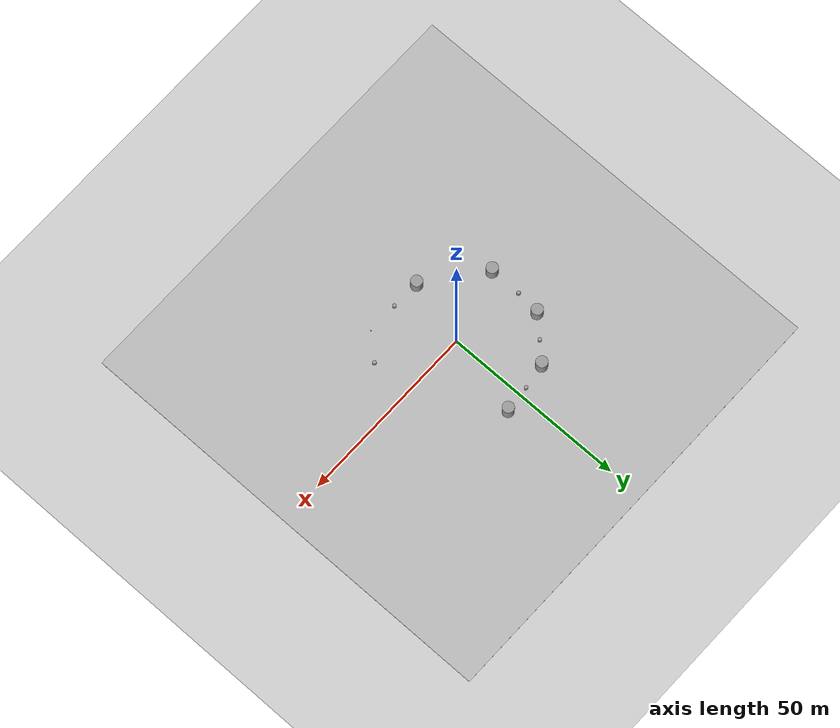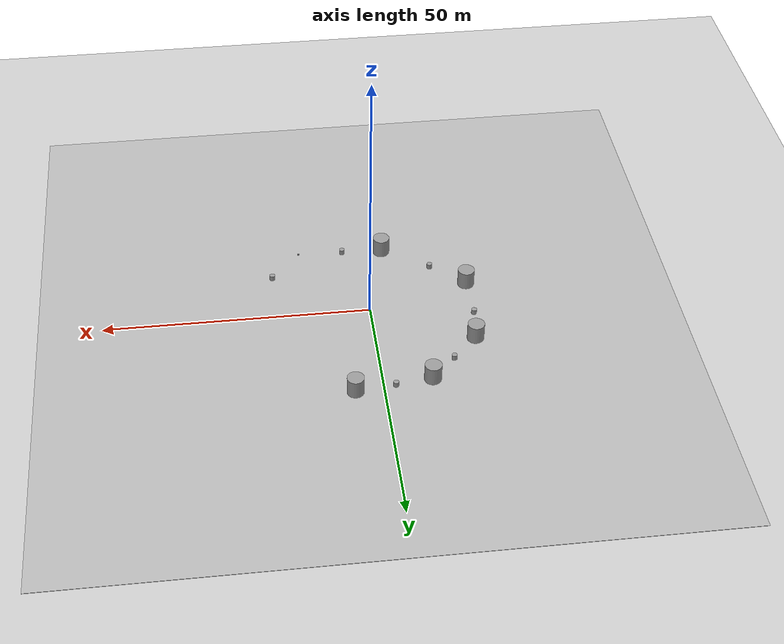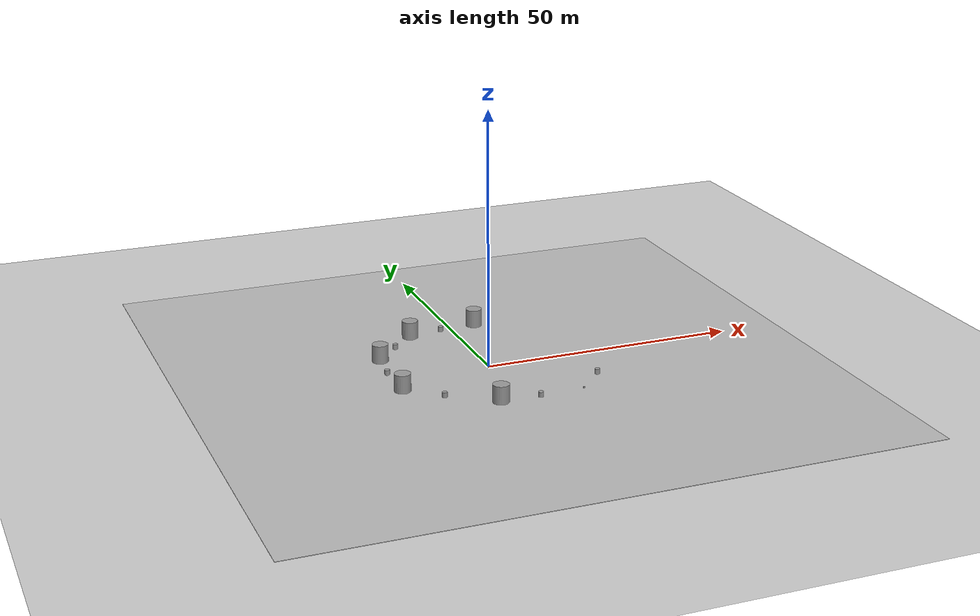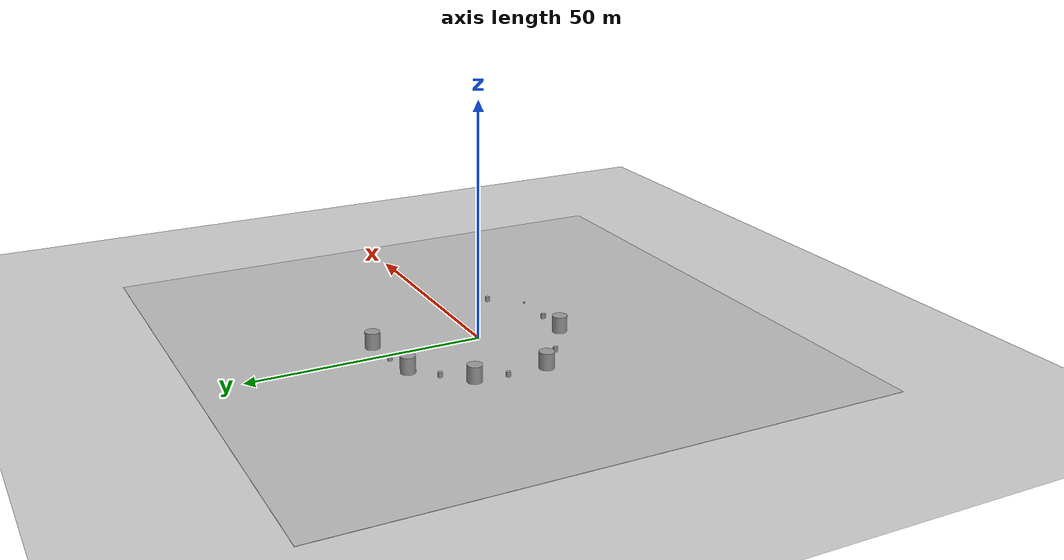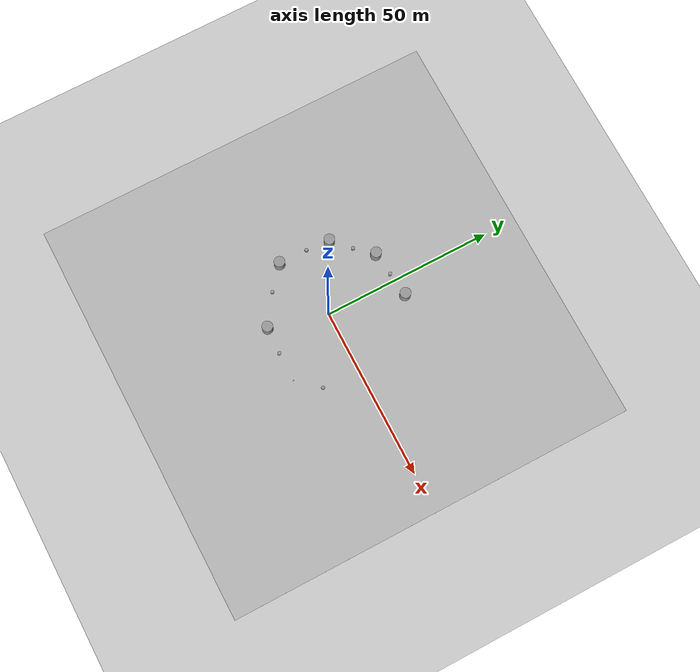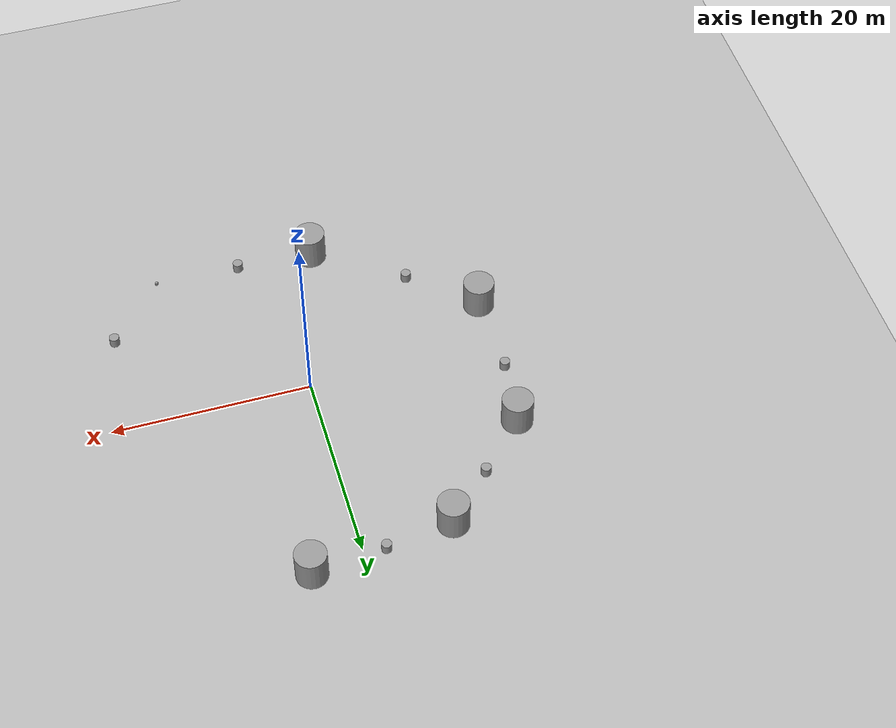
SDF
<sdf version="1.7">
 <world name="default">
  <light name="sun" type="directional">
   <pose>0 0 10 0 -0 0</pose>
   <diffuse>0.8 0.8 0.8 1</diffuse>
   <specular>0.2 0.2 0.2 1</specular>
   <attenuation>
    <range>1000</range>
    <constant>0.9</constant>
    <linear>0.01</linear>
    <quadratic>0.001</quadratic>
   </attenuation>
   <direction>-0.5 0.1 -0.9</direction>
   <spot><inner_angle>0</inner_angle><outer_angle>0</outer_angle><falloff>0</falloff></spot>
  </light>
  <model name="ground_plane">
   <static>1</static>
   <link name="link">
    <collision name="collision">
     <geometry><plane><normal>0 0 1</normal><size>100 100</size></plane></geometry>
     <surface>
      <contact><collide_bitmask>65535</collide_bitmask></contact>
      <friction><ode><mu>100</mu><mu2>50</mu2></ode></friction>
     </surface>
    </collision>
    <visual name="visual">
     <cast_shadows>0</cast_shadows>
     <geometry><plane><normal>0 0 1</normal><size>100 100</size></plane></geometry>
     <material>
      <script><uri>file://media/materials/scripts/gazebo.material</uri><name>Gazebo/Grey</name></script>
     </material>
    </visual>
   </link>
  </model>
  <gravity>0 0 -9.8</gravity>
  <magnetic_field>6e-06 2.3e-05 -4.2e-05</magnetic_field>
  <atmosphere type="adiabatic"/>
  <physics type="ode">
   <max_step_size>0.001</max_step_size>
   <real_time_factor>1</real_time_factor>
   <real_time_update_rate>1000</real_time_update_rate>
  </physics>
  <scene><ambient>0.4 0.4 0.4 1</ambient><background>0.7 0.7 0.7 1</background><shadows>1</shadows></scene>
  <spherical_coordinates>
   <surface_model>EARTH_WGS84</surface_model>
   <latitude_deg>0</latitude_deg>
   <longitude_deg>0</longitude_deg>
   <elevation>0</elevation>
   <heading_deg>0</heading_deg>
  </spherical_coordinates>
  <model name="unit_cylinder">
   <pose>12.1108 -17.2328 0.550001 0 -0 0.000214</pose>
   <link name="link">
    <inertial>
     <mass>1</mass>
     <inertia><ixx>0.145833</ixx><ixy>0</ixy><ixz>0</ixz><iyy>0.145833</iyy><iyz>0</iyz><izz>0.125</izz></inertia>
    </inertial>
    <collision name="collision">
     <geometry><cylinder><radius>0.1593</radius><length>0.283665</length></cylinder></geometry>
    </collision>
    <visual name="visual">
     <geometry><cylinder><radius>0.1593</radius><length>0.283665</length></cylinder></geometry>
     <material>
      <script><name>Gazebo/Grey</name><uri>file://media/materials/scripts/gazebo.material</uri></script>
     </material>
    </visual>
   </link>
  </model>
  <model name="unit_cylinder_clone">
   <pose>-4.15848 -16.8337 1.81265 -0 1e-06 0.000227</pose>
   <link name="link">
    <inertial>
     <mass>1</mass>
     <inertia><ixx>0.145833</ixx><ixy>0</ixy><ixz>0</ixz><iyy>0.145833</iyy><iyz>0</iyz><izz>0.125</izz></inertia>
    </inertial>
    <collision name="collision">
     <geometry><cylinder><radius>1.56936</radius><length>3.52529</length></cylinder></geometry>
    </collision>
    <visual name="visual">
     <geometry><cylinder><radius>1.56936</radius><length>3.52529</length></cylinder></geometry>
     <material>
      <script><name>Gazebo/Grey</name><uri>file://media/materials/scripts/gazebo.material</uri></script>
     </material>
    </visual>
   </link>
  </model>
  <model name="unit_cylinder_clone_0">
   <pose>-19.0627 -5.44055 1.81264 0 -0 0.000229</pose>
   <link name="link">
    <inertial>
     <mass>1</mass>
     <inertia><ixx>0.145833</ixx><ixy>0</ixy><ixz>0</ixz><iyy>0.145833</iyy><iyz>0</iyz><izz>0.125</izz></inertia>
    </inertial>
    <collision name="collision">
     <geometry><cylinder><radius>1.56936</radius><length>3.52529</length></cylinder></geometry>
    </collision>
    <visual name="visual">
     <geometry><cylinder><radius>1.56936</radius><length>3.52529</length></cylinder></geometry>
     <material>
      <script><name>Gazebo/Grey</name><uri>file://media/materials/scripts/gazebo.material</uri></script>
     </material>
    </visual>
   </link>
  </model>
  <model name="unit_cylinder_clone_1">
   <pose>-18.3352 9.89907 1.81265 2e-06 -2e-06 0.000227</pose>
   <link name="link">
    <inertial>
     <mass>1</mass>
     <inertia><ixx>0.145833</ixx><ixy>0</ixy><ixz>0</ixz><iyy>0.145833</iyy><iyz>0</iyz><izz>0.125</izz></inertia>
    </inertial>
    <collision name="collision">
     <geometry><cylinder><radius>1.56936</radius><length>3.52529</length></cylinder></geometry>
    </collision>
    <visual name="visual">
     <geometry><cylinder><radius>1.56936</radius><length>3.52529</length></cylinder></geometry>
     <material>
      <script><name>Gazebo/Grey</name><uri>file://media/materials/scripts/gazebo.material</uri></script>
     </material>
    </visual>
   </link>
  </model>
  <model name="unit_cylinder_clone_2">
   <pose>-8.93652 19.7103 1.81264 0 -0 0.000228</pose>
   <link name="link">
    <inertial>
     <mass>1</mass>
     <inertia><ixx>0.145833</ixx><ixy>0</ixy><ixz>0</ixz><iyy>0.145833</iyy><iyz>0</iyz><izz>0.125</izz></inertia>
    </inertial>
    <collision name="collision">
     <geometry><cylinder><radius>1.56936</radius><length>3.52529</length></cylinder></geometry>
    </collision>
    <visual name="visual">
     <geometry><cylinder><radius>1.56936</radius><length>3.52529</length></cylinder></geometry>
     <material>
      <script><name>Gazebo/Grey</name><uri>file://media/materials/scripts/gazebo.material</uri></script>
     </material>
    </visual>
   </link>
  </model>
  <model name="unit_cylinder_clone_3">
   <pose>5.1579 21.4058 1.81265 -1e-06 0 0.000231</pose>
   <link name="link">
    <inertial>
     <mass>1</mass>
     <inertia><ixx>0.145833</ixx><ixy>0</ixy><ixz>0</ixz><iyy>0.145833</iyy><iyz>0</iyz><izz>0.125</izz></inertia>
    </inertial>
    <collision name="collision">
     <geometry><cylinder><radius>1.56936</radius><length>3.52529</length></cylinder></geometry>
    </collision>
    <visual name="visual">
     <geometry><cylinder><radius>1.56936</radius><length>3.52529</length></cylinder></geometry>
     <material>
      <script><name>Gazebo/Grey</name><uri>file://media/materials/scripts/gazebo.material</uri></script>
     </material>
    </visual>
   </link>
  </model>
  <model name="unit_cylinder_0">
   <pose>-2.1803 20.6612 0.549991 -1e-06 -2e-06 -1.9e-05</pose>
   <link name="link">
    <inertial>
     <mass>1</mass>
     <inertia><ixx>0.145833</ixx><ixy>0</ixy><ixz>0</ixz><iyy>0.145833</iyy><iyz>0</iyz><izz>0.125</izz></inertia>
    </inertial>
    <collision name="collision">
     <geometry><cylinder><radius>0.5</radius><length>1</length></cylinder></geometry>
    </collision>
    <visual name="visual">
     <geometry><cylinder><radius>0.5</radius><length>1</length></cylinder></geometry>
     <material>
      <script><name>Gazebo/Grey</name><uri>file://media/materials/scripts/gazebo.material</uri></script>
     </material>
    </visual>
   </link>
  </model>
  <model name="unit_cylinder_1">
   <pose>-13.6093 14.9521 0.550001 2e-06 1e-06 8e-06</pose>
   <link name="link">
    <inertial>
     <mass>1</mass>
     <inertia><ixx>0.145833</ixx><ixy>0</ixy><ixz>0</ixz><iyy>0.145833</iyy><iyz>0</iyz><izz>0.125</izz></inertia>
    </inertial>
    <collision name="collision">
     <geometry><cylinder><radius>0.5</radius><length>1</length></cylinder></geometry>
    </collision>
    <visual name="visual">
     <geometry><cylinder><radius>0.5</radius><length>1</length></cylinder></geometry>
     <material>
      <script><name>Gazebo/Grey</name><uri>file://media/materials/scripts/gazebo.material</uri></script>
     </material>
    </visual>
   </link>
  </model>
  <model name="unit_cylinder_2">
   <pose>-19.216 3.07988 0.550001 3e-06 1e-06 8e-06</pose>
   <link name="link">
    <inertial>
     <mass>1</mass>
     <inertia><ixx>0.145833</ixx><ixy>0</ixy><ixz>0</ixz><iyy>0.145833</iyy><iyz>0</iyz><izz>0.125</izz></inertia>
    </inertial>
    <collision name="collision">
     <geometry><cylinder><radius>0.5</radius><length>1</length></cylinder></geometry>
    </collision>
    <visual name="visual">
     <geometry><cylinder><radius>0.5</radius><length>1</length></cylinder></geometry>
     <material>
      <script><name>Gazebo/Grey</name><uri>file://media/materials/scripts/gazebo.material</uri></script>
     </material>
    </visual>
   </link>
  </model>
  <model name="unit_cylinder_3">
   <pose>-12.8644 -10.9636 0.549991 -1e-06 -0 4e-06</pose>
   <link name="link">
    <inertial>
     <mass>1</mass>
     <inertia><ixx>0.145833</ixx><ixy>0</ixy><ixz>0</ixz><iyy>0.145833</iyy><iyz>0</iyz><izz>0.125</izz></inertia>
    </inertial>
    <collision name="collision">
     <geometry><cylinder><radius>0.5</radius><length>1</length></cylinder></geometry>
    </collision>
    <visual name="visual">
     <geometry><cylinder><radius>0.5</radius><length>1</length></cylinder></geometry>
     <material>
      <script><name>Gazebo/Grey</name><uri>file://media/materials/scripts/gazebo.material</uri></script>
     </material>
    </visual>
   </link>
  </model>
  <model name="unit_cylinder_4">
   <pose>3.53334 -17.2111 0.550001 -1e-06 0 2e-06</pose>
   <link name="link">
    <inertial>
     <mass>1</mass>
     <inertia><ixx>0.145833</ixx><ixy>0</ixy><ixz>0</ixz><iyy>0.145833</iyy><iyz>0</iyz><izz>0.125</izz></inertia>
    </inertial>
    <collision name="collision">
     <geometry><cylinder><radius>0.5</radius><length>1</length></cylinder></geometry>
    </collision>
    <visual name="visual">
     <geometry><cylinder><radius>0.5</radius><length>1</length></cylinder></geometry>
     <material>
      <script><name>Gazebo/Grey</name><uri>file://media/materials/scripts/gazebo.material</uri></script>
     </material>
    </visual>
   </link>
  </model>
  <model name="unit_cylinder_5">
   <pose>17.6415 -10.9647 0.549991 2e-06 1e-06 0</pose>
   <link name="link">
    <inertial>
     <mass>1</mass>
     <inertia><ixx>0.145833</ixx><ixy>0</ixy><ixz>0</ixz><iyy>0.145833</iyy><iyz>0</iyz><izz>0.125</izz></inertia>
    </inertial>
    <collision name="collision">
     <geometry><cylinder><radius>0.5</radius><length>1</length></cylinder></geometry>
    </collision>
    <visual name="visual">
     <geometry><cylinder><radius>0.5</radius><length>1</length></cylinder></geometry>
     <material>
      <script><name>Gazebo/Grey</name><uri>file://media/materials/scripts/gazebo.material</uri></script>
     </material>
    </visual>
   </link>
  </model>
  <model name="asphalt_ground_plane">
   <static>1</static>
   <link name="link">
    <collision name="collision">
     <geometry><box><size>120 120 0.1</size></box></geometry>
     <surface><friction><ode><mu>100</mu><mu2>50</mu2></ode></friction></surface>
    </collision>
    <visual name="visual">
     <cast_shadows>0</cast_shadows>
     <geometry><box><size>120 120 0.1</size></box></geometry>
     <material>
      <script>
       <uri>model://asphalt_ground_plane/materials/scripts</uri>
       <uri>model://asphalt_ground_plane/materials/textures/</uri>
       <name>AsphaltGroundPlane/Image</name>
      </script>
     </material>
    </visual>
   </link>
   <pose>1.83657 -0.397501 0 0 -0 0</pose>
  </model>
 </world>
</sdf>
